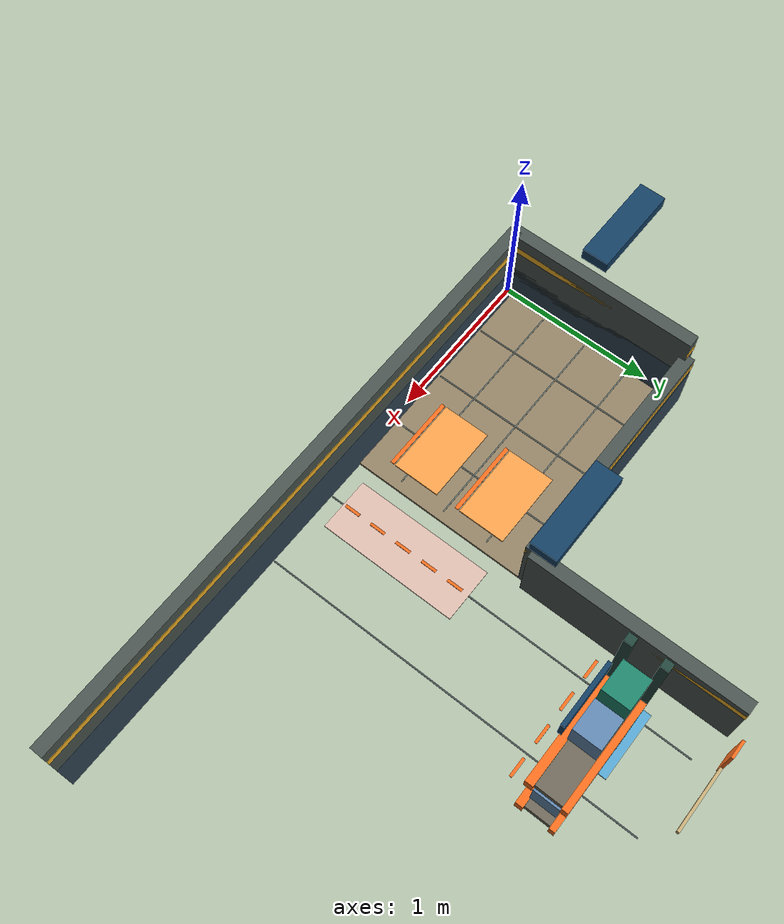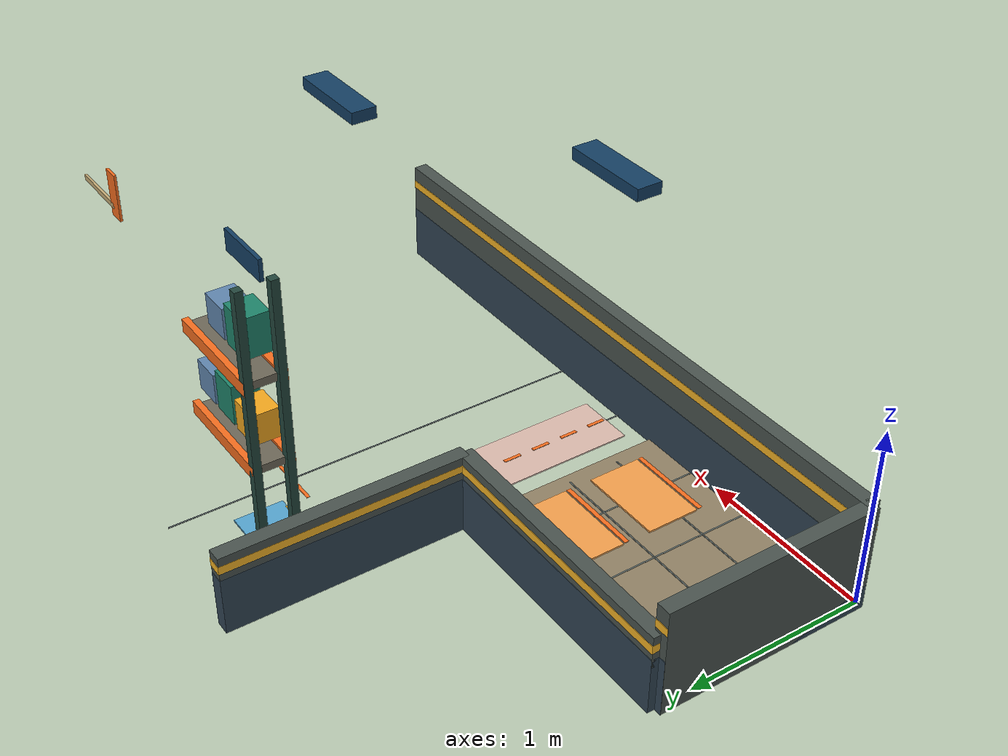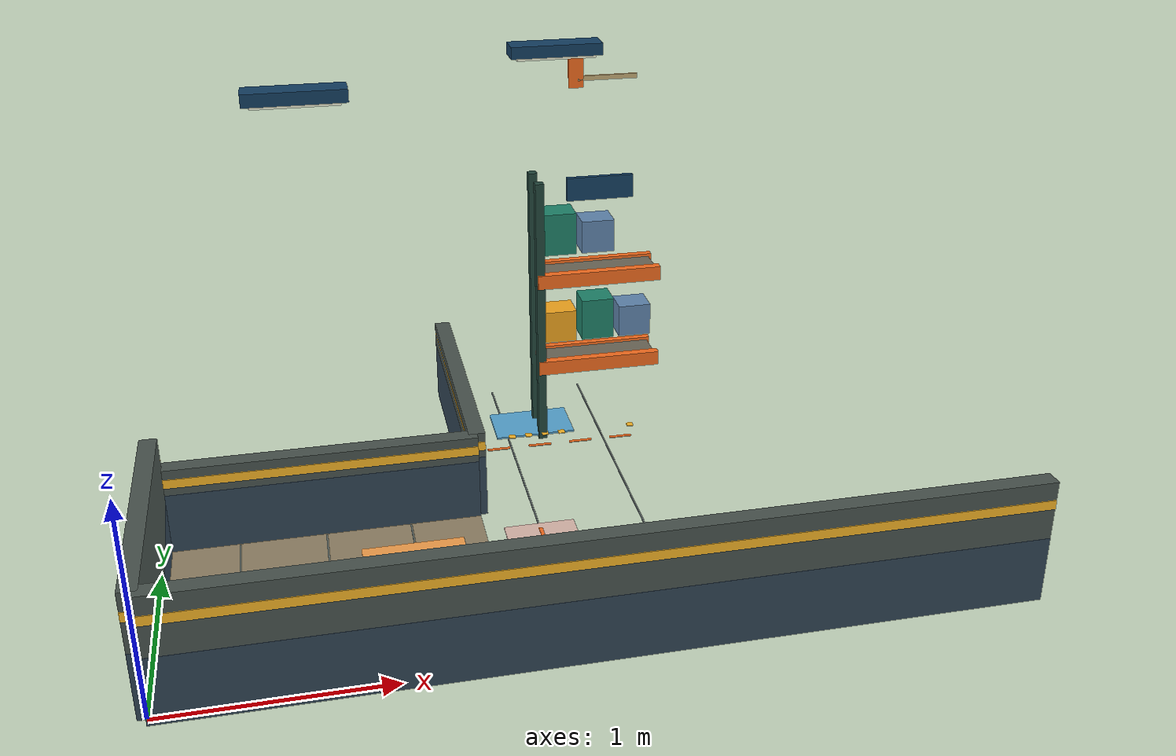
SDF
<sdf version="1.9">
 <world name="toktak_warehouse">
  <model name="ground_plane">
   <static>true</static>
   <link name="link">
    <collision name="collision">
     <geometry><plane><normal>0 0 1</normal><size>100 100</size></plane></geometry>
    </collision>
   </link>
  </model>
  <model name="002_dispatch_wing_floor">
   <static>true</static>
   <link name="link">
    <visual name="visual">
     <geometry><box><size>1.4900 1.2000 0.0180</size></box></geometry>
     <material>
      <ambient>0.57 0.51 0.40 1</ambient>
      <diffuse>0.57 0.51 0.40 1</diffuse>
      <specular>0.20 0.22 0.24 1</specular>
     </material>
    </visual>
   </link>
   <pose>0.7450 0.6000 0.0090 0.0000 0.0000 0.0000</pose>
  </model>
  <model name="003_floor_joint">
   <static>true</static>
   <link name="link">
    <visual name="visual">
     <geometry><box><size>0.0080 2.4000 0.0030</size></box></geometry>
     <material>
      <ambient>0.34 0.38 0.38 1</ambient>
      <diffuse>0.34 0.38 0.38 1</diffuse>
      <specular>0.20 0.22 0.24 1</specular>
     </material>
    </visual>
   </link>
   <pose>1.7500 1.2500 0.0180 0.0000 0.0000 0.0000</pose>
  </model>
  <model name="004_floor_joint">
   <static>true</static>
   <link name="link">
    <visual name="visual">
     <geometry><box><size>0.0080 2.4000 0.0030</size></box></geometry>
     <material>
      <ambient>0.34 0.38 0.38 1</ambient>
      <diffuse>0.34 0.38 0.38 1</diffuse>
      <specular>0.20 0.22 0.24 1</specular>
     </material>
    </visual>
   </link>
   <pose>2.2500 1.2500 0.0180 0.0000 0.0000 0.0000</pose>
  </model>
  <model name="014_dispatch_floor_joint">
   <static>true</static>
   <link name="link">
    <visual name="visual">
     <geometry><box><size>0.0080 1.1000 0.0030</size></box></geometry>
     <material>
      <ambient>0.38 0.42 0.40 1</ambient>
      <diffuse>0.38 0.42 0.40 1</diffuse>
      <specular>0.20 0.22 0.24 1</specular>
     </material>
    </visual>
   </link>
   <pose>0.3500 0.6000 0.0190 0.0000 0.0000 0.0000</pose>
  </model>
  <model name="015_dispatch_floor_joint">
   <static>true</static>
   <link name="link">
    <visual name="visual">
     <geometry><box><size>0.0080 1.1000 0.0030</size></box></geometry>
     <material>
      <ambient>0.38 0.42 0.40 1</ambient>
      <diffuse>0.38 0.42 0.40 1</diffuse>
      <specular>0.20 0.22 0.24 1</specular>
     </material>
    </visual>
   </link>
   <pose>0.7500 0.6000 0.0190 0.0000 0.0000 0.0000</pose>
  </model>
  <model name="016_dispatch_floor_joint">
   <static>true</static>
   <link name="link">
    <visual name="visual">
     <geometry><box><size>0.0080 1.1000 0.0030</size></box></geometry>
     <material>
      <ambient>0.38 0.42 0.40 1</ambient>
      <diffuse>0.38 0.42 0.40 1</diffuse>
      <specular>0.20 0.22 0.24 1</specular>
     </material>
    </visual>
   </link>
   <pose>1.1500 0.6000 0.0190 0.0000 0.0000 0.0000</pose>
  </model>
  <model name="017_dispatch_floor_joint">
   <static>true</static>
   <link name="link">
    <visual name="visual">
     <geometry><box><size>1.3800 0.0080 0.0030</size></box></geometry>
     <material>
      <ambient>0.38 0.42 0.40 1</ambient>
      <diffuse>0.38 0.42 0.40 1</diffuse>
      <specular>0.20 0.22 0.24 1</specular>
     </material>
    </visual>
   </link>
   <pose>0.7450 0.3000 0.0190 0.0000 0.0000 0.0000</pose>
  </model>
  <model name="018_dispatch_floor_joint">
   <static>true</static>
   <link name="link">
    <visual name="visual">
     <geometry><box><size>1.3800 0.0080 0.0030</size></box></geometry>
     <material>
      <ambient>0.38 0.42 0.40 1</ambient>
      <diffuse>0.38 0.42 0.40 1</diffuse>
      <specular>0.20 0.22 0.24 1</specular>
     </material>
    </visual>
   </link>
   <pose>0.7450 0.6000 0.0190 0.0000 0.0000 0.0000</pose>
  </model>
  <model name="019_dispatch_floor_joint">
   <static>true</static>
   <link name="link">
    <visual name="visual">
     <geometry><box><size>1.3800 0.0080 0.0030</size></box></geometry>
     <material>
      <ambient>0.38 0.42 0.40 1</ambient>
      <diffuse>0.38 0.42 0.40 1</diffuse>
      <specular>0.20 0.22 0.24 1</specular>
     </material>
    </visual>
   </link>
   <pose>0.7450 0.9000 0.0190 0.0000 0.0000 0.0000</pose>
  </model>
  <model name="020_south_wall">
   <static>true</static>
   <link name="link">
    <collision name="collision"><geometry><box><size>3.8100 0.0800 0.6000</size></box></geometry></collision>
    <visual name="visual">
     <geometry><box><size>3.8100 0.0800 0.6000</size></box></geometry>
     <material>
      <ambient>0.29 0.33 0.31 1</ambient>
      <diffuse>0.29 0.33 0.31 1</diffuse>
      <specular>0.20 0.22 0.24 1</specular>
     </material>
    </visual>
   </link>
   <pose>1.9050 0.0000 0.3000 0.0000 0.0000 0.0000</pose>
  </model>
  <model name="021_south_plinth">
   <static>true</static>
   <link name="link">
    <visual name="visual">
     <geometry><box><size>3.8100 0.0820 0.3200</size></box></geometry>
     <material>
      <ambient>0.19 0.27 0.33 1</ambient>
      <diffuse>0.19 0.27 0.33 1</diffuse>
      <specular>0.20 0.22 0.24 1</specular>
     </material>
    </visual>
   </link>
   <pose>1.9050 0.0000 0.1600 0.0000 0.0000 0.0000</pose>
  </model>
  <model name="022_south_safety_band">
   <static>true</static>
   <link name="link">
    <visual name="visual">
     <geometry><box><size>3.8100 0.0840 0.0450</size></box></geometry>
     <material>
      <ambient>0.98 0.72 0.15 1</ambient>
      <diffuse>0.98 0.72 0.15 1</diffuse>
      <specular>0.20 0.22 0.24 1</specular>
     </material>
    </visual>
   </link>
   <pose>1.9050 0.0000 0.4900 0.0000 0.0000 0.0000</pose>
  </model>
  <model name="029_inner_vertical_wall">
   <static>true</static>
   <link name="link">
    <collision name="collision"><geometry><box><size>0.0800 1.3300 0.4500</size></box></geometry></collision>
    <visual name="visual">
     <geometry><box><size>0.0800 1.3300 0.4500</size></box></geometry>
     <material>
      <ambient>0.29 0.33 0.31 1</ambient>
      <diffuse>0.29 0.33 0.31 1</diffuse>
      <specular>0.20 0.22 0.24 1</specular>
     </material>
    </visual>
   </link>
   <pose>1.4900 1.8650 0.2250 0.0000 0.0000 0.0000</pose>
  </model>
  <model name="030_inner_vertical_plinth">
   <static>true</static>
   <link name="link">
    <visual name="visual">
     <geometry><box><size>0.0800 1.3320 0.3200</size></box></geometry>
     <material>
      <ambient>0.19 0.27 0.33 1</ambient>
      <diffuse>0.19 0.27 0.33 1</diffuse>
      <specular>0.20 0.22 0.24 1</specular>
     </material>
    </visual>
   </link>
   <pose>1.4900 1.8650 0.1600 0.0000 0.0000 0.0000</pose>
  </model>
  <model name="031_inner_vertical_safety_band">
   <static>true</static>
   <link name="link">
    <visual name="visual">
     <geometry><box><size>0.0800 1.3340 0.0450</size></box></geometry>
     <material>
      <ambient>0.98 0.72 0.15 1</ambient>
      <diffuse>0.98 0.72 0.15 1</diffuse>
      <specular>0.20 0.22 0.24 1</specular>
     </material>
    </visual>
   </link>
   <pose>1.4900 1.8650 0.3800 0.0000 0.0000 0.0000</pose>
  </model>
  <model name="032_inner_horizontal_wall">
   <static>true</static>
   <link name="link">
    <collision name="collision"><geometry><box><size>1.4900 0.0800 0.4500</size></box></geometry></collision>
    <visual name="visual">
     <geometry><box><size>1.4900 0.0800 0.4500</size></box></geometry>
     <material>
      <ambient>0.29 0.33 0.31 1</ambient>
      <diffuse>0.29 0.33 0.31 1</diffuse>
      <specular>0.20 0.22 0.24 1</specular>
     </material>
    </visual>
   </link>
   <pose>0.7450 1.2000 0.2250 0.0000 0.0000 0.0000</pose>
  </model>
  <model name="033_inner_horizontal_plinth">
   <static>true</static>
   <link name="link">
    <visual name="visual">
     <geometry><box><size>1.4900 0.0820 0.3200</size></box></geometry>
     <material>
      <ambient>0.19 0.27 0.33 1</ambient>
      <diffuse>0.19 0.27 0.33 1</diffuse>
      <specular>0.20 0.22 0.24 1</specular>
     </material>
    </visual>
   </link>
   <pose>0.7450 1.2000 0.1600 0.0000 0.0000 0.0000</pose>
  </model>
  <model name="034_inner_horizontal_safety_band">
   <static>true</static>
   <link name="link">
    <visual name="visual">
     <geometry><box><size>1.4900 0.0840 0.0450</size></box></geometry>
     <material>
      <ambient>0.98 0.72 0.15 1</ambient>
      <diffuse>0.98 0.72 0.15 1</diffuse>
      <specular>0.20 0.22 0.24 1</specular>
     </material>
    </visual>
   </link>
   <pose>0.7450 1.2000 0.3800 0.0000 0.0000 0.0000</pose>
  </model>
  <model name="035_west_lower_wall">
   <static>true</static>
   <link name="link">
    <collision name="collision"><geometry><box><size>0.0800 1.2000 0.6000</size></box></geometry></collision>
    <visual name="visual">
     <geometry><box><size>0.0800 1.2000 0.6000</size></box></geometry>
     <material>
      <ambient>0.29 0.33 0.31 1</ambient>
      <diffuse>0.29 0.33 0.31 1</diffuse>
      <specular>0.20 0.22 0.24 1</specular>
     </material>
    </visual>
   </link>
   <pose>0.0000 0.6000 0.3000 0.0000 0.0000 0.0000</pose>
  </model>
  <model name="036_west_lower_plinth">
   <static>true</static>
   <link name="link">
    <visual name="visual">
     <geometry><box><size>0.0800 1.2020 0.3200</size></box></geometry>
     <material>
      <ambient>0.19 0.27 0.33 1</ambient>
      <diffuse>0.19 0.27 0.33 1</diffuse>
      <specular>0.20 0.22 0.24 1</specular>
     </material>
    </visual>
   </link>
   <pose>0.0000 0.6000 0.1600 0.0000 0.0000 0.0000</pose>
  </model>
  <model name="037_west_lower_safety_band">
   <static>true</static>
   <link name="link">
    <visual name="visual">
     <geometry><box><size>0.0800 1.2040 0.0450</size></box></geometry>
     <material>
      <ambient>0.98 0.72 0.15 1</ambient>
      <diffuse>0.98 0.72 0.15 1</diffuse>
      <specular>0.20 0.22 0.24 1</specular>
     </material>
    </visual>
   </link>
   <pose>0.0000 0.6000 0.4900 0.0000 0.0000 0.0000</pose>
  </model>
  <model name="039_lane_dash">
   <static>true</static>
   <link name="link">
    <visual name="visual">
     <geometry><box><size>0.1200 0.0180 0.0040</size></box></geometry>
     <material>
      <ambient>0.97 0.43 0.12 1</ambient>
      <diffuse>0.97 0.43 0.12 1</diffuse>
      <specular>0.20 0.22 0.24 1</specular>
     </material>
    </visual>
   </link>
   <pose>1.6800 1.7700 0.0300 0.0000 0.0000 0.0000</pose>
  </model>
  <model name="040_lane_dash">
   <static>true</static>
   <link name="link">
    <visual name="visual">
     <geometry><box><size>0.1200 0.0180 0.0040</size></box></geometry>
     <material>
      <ambient>0.97 0.43 0.12 1</ambient>
      <diffuse>0.97 0.43 0.12 1</diffuse>
      <specular>0.20 0.22 0.24 1</specular>
     </material>
    </visual>
   </link>
   <pose>1.9000 1.7700 0.0300 0.0000 0.0000 0.0000</pose>
  </model>
  <model name="041_lane_dash">
   <static>true</static>
   <link name="link">
    <visual name="visual">
     <geometry><box><size>0.1200 0.0180 0.0040</size></box></geometry>
     <material>
      <ambient>0.97 0.43 0.12 1</ambient>
      <diffuse>0.97 0.43 0.12 1</diffuse>
      <specular>0.20 0.22 0.24 1</specular>
     </material>
    </visual>
   </link>
   <pose>2.1200 1.7700 0.0300 0.0000 0.0000 0.0000</pose>
  </model>
  <model name="042_lane_dash">
   <static>true</static>
   <link name="link">
    <visual name="visual">
     <geometry><box><size>0.1200 0.0180 0.0040</size></box></geometry>
     <material>
      <ambient>0.97 0.43 0.12 1</ambient>
      <diffuse>0.97 0.43 0.12 1</diffuse>
      <specular>0.20 0.22 0.24 1</specular>
     </material>
    </visual>
   </link>
   <pose>2.3400 1.7700 0.0300 0.0000 0.0000 0.0000</pose>
  </model>
  <model name="049_customer_aisle">
   <static>true</static>
   <link name="link">
    <visual name="visual">
     <geometry><box><size>0.3400 0.8800 0.0080</size></box></geometry>
     <material>
      <ambient>0.86 0.73 0.68 1</ambient>
      <diffuse>0.86 0.73 0.68 1</diffuse>
      <specular>0.20 0.22 0.24 1</specular>
     </material>
    </visual>
   </link>
   <pose>1.7500 0.5750 0.0240 0.0000 0.0000 0.0000</pose>
  </model>
  <model name="050_customer_lane_dash">
   <static>true</static>
   <link name="link">
    <visual name="visual">
     <geometry><box><size>0.0180 0.1000 0.0040</size></box></geometry>
     <material>
      <ambient>0.97 0.43 0.12 1</ambient>
      <diffuse>0.97 0.43 0.12 1</diffuse>
      <specular>0.20 0.22 0.24 1</specular>
     </material>
    </visual>
   </link>
   <pose>1.7500 0.2000 0.0300 0.0000 0.0000 0.0000</pose>
  </model>
  <model name="051_customer_lane_dash">
   <static>true</static>
   <link name="link">
    <visual name="visual">
     <geometry><box><size>0.0180 0.1000 0.0040</size></box></geometry>
     <material>
      <ambient>0.97 0.43 0.12 1</ambient>
      <diffuse>0.97 0.43 0.12 1</diffuse>
      <specular>0.20 0.22 0.24 1</specular>
     </material>
    </visual>
   </link>
   <pose>1.7500 0.3800 0.0300 0.0000 0.0000 0.0000</pose>
  </model>
  <model name="052_customer_lane_dash">
   <static>true</static>
   <link name="link">
    <visual name="visual">
     <geometry><box><size>0.0180 0.1000 0.0040</size></box></geometry>
     <material>
      <ambient>0.97 0.43 0.12 1</ambient>
      <diffuse>0.97 0.43 0.12 1</diffuse>
      <specular>0.20 0.22 0.24 1</specular>
     </material>
    </visual>
   </link>
   <pose>1.7500 0.5600 0.0300 0.0000 0.0000 0.0000</pose>
  </model>
  <model name="053_customer_lane_dash">
   <static>true</static>
   <link name="link">
    <visual name="visual">
     <geometry><box><size>0.0180 0.1000 0.0040</size></box></geometry>
     <material>
      <ambient>0.97 0.43 0.12 1</ambient>
      <diffuse>0.97 0.43 0.12 1</diffuse>
      <specular>0.20 0.22 0.24 1</specular>
     </material>
    </visual>
   </link>
   <pose>1.7500 0.7400 0.0300 0.0000 0.0000 0.0000</pose>
  </model>
  <model name="054_customer_lane_dash">
   <static>true</static>
   <link name="link">
    <visual name="visual">
     <geometry><box><size>0.0180 0.1000 0.0040</size></box></geometry>
     <material>
      <ambient>0.97 0.43 0.12 1</ambient>
      <diffuse>0.97 0.43 0.12 1</diffuse>
      <specular>0.20 0.22 0.24 1</specular>
     </material>
    </visual>
   </link>
   <pose>1.7500 0.9200 0.0300 0.0000 0.0000 0.0000</pose>
  </model>
  <model name="055_L1_pad">
   <static>true</static>
   <link name="link">
    <visual name="visual">
     <geometry><box><size>0.4200 0.2700 0.0100</size></box></geometry>
     <material>
      <ambient>0.34 0.65 0.82 1</ambient>
      <diffuse>0.34 0.65 0.82 1</diffuse>
      <specular>0.20 0.22 0.24 1</specular>
     </material>
    </visual>
   </link>
   <pose>1.9000 2.0250 0.0260 0.0000 0.0000 0.0000</pose>
  </model>
  <model name="056_L1_approach_mark">
   <static>true</static>
   <link name="link">
    <visual name="visual">
     <geometry><box><size>0.0350 0.0350 0.0040</size></box></geometry>
     <material>
      <ambient>0.98 0.72 0.15 1</ambient>
      <diffuse>0.98 0.72 0.15 1</diffuse>
      <specular>0.20 0.22 0.24 1</specular>
     </material>
    </visual>
   </link>
   <pose>1.7700 1.8820 0.0330 0.0000 0.0000 0.0000</pose>
  </model>
  <model name="057_L1_approach_mark">
   <static>true</static>
   <link name="link">
    <visual name="visual">
     <geometry><box><size>0.0350 0.0350 0.0040</size></box></geometry>
     <material>
      <ambient>0.98 0.72 0.15 1</ambient>
      <diffuse>0.98 0.72 0.15 1</diffuse>
      <specular>0.20 0.22 0.24 1</specular>
     </material>
    </visual>
   </link>
   <pose>1.8600 1.8820 0.0330 0.0000 0.0000 0.0000</pose>
  </model>
  <model name="058_L1_approach_mark">
   <static>true</static>
   <link name="link">
    <visual name="visual">
     <geometry><box><size>0.0350 0.0350 0.0040</size></box></geometry>
     <material>
      <ambient>0.98 0.72 0.15 1</ambient>
      <diffuse>0.98 0.72 0.15 1</diffuse>
      <specular>0.20 0.22 0.24 1</specular>
     </material>
    </visual>
   </link>
   <pose>1.9500 1.8820 0.0330 0.0000 0.0000 0.0000</pose>
  </model>
  <model name="059_L1_approach_mark">
   <static>true</static>
   <link name="link">
    <visual name="visual">
     <geometry><box><size>0.0350 0.0350 0.0040</size></box></geometry>
     <material>
      <ambient>0.98 0.72 0.15 1</ambient>
      <diffuse>0.98 0.72 0.15 1</diffuse>
      <specular>0.20 0.22 0.24 1</specular>
     </material>
    </visual>
   </link>
   <pose>2.0400 1.8820 0.0330 0.0000 0.0000 0.0000</pose>
  </model>
  <model name="061_L2_approach_mark">
   <static>true</static>
   <link name="link">
    <visual name="visual">
     <geometry><box><size>0.0350 0.0350 0.0040</size></box></geometry>
     <material>
      <ambient>0.98 0.72 0.15 1</ambient>
      <diffuse>0.98 0.72 0.15 1</diffuse>
      <specular>0.20 0.22 0.24 1</specular>
     </material>
    </visual>
   </link>
   <pose>2.4200 1.8820 0.0330 0.0000 0.0000 0.0000</pose>
  </model>
  <model name="065_C1_pad">
   <static>true</static>
   <link name="link">
    <visual name="visual">
     <geometry><box><size>0.4800 0.3000 0.0100</size></box></geometry>
     <material>
      <ambient>0.96 0.63 0.30 1</ambient>
      <diffuse>0.96 0.63 0.30 1</diffuse>
      <specular>0.20 0.22 0.24 1</specular>
     </material>
    </visual>
   </link>
   <pose>1.1400 0.8200 0.0260 0.0000 0.0000 0.0000</pose>
  </model>
  <model name="066_C1_pad_front">
   <static>true</static>
   <link name="link">
    <visual name="visual">
     <geometry><box><size>0.4800 0.0250 0.0040</size></box></geometry>
     <material>
      <ambient>0.97 0.43 0.12 1</ambient>
      <diffuse>0.97 0.43 0.12 1</diffuse>
      <specular>0.20 0.22 0.24 1</specular>
     </material>
    </visual>
   </link>
   <pose>1.1400 0.6500 0.0310 0.0000 0.0000 0.0000</pose>
  </model>
  <model name="067_C2_pad">
   <static>true</static>
   <link name="link">
    <visual name="visual">
     <geometry><box><size>0.4800 0.3000 0.0100</size></box></geometry>
     <material>
      <ambient>0.96 0.63 0.30 1</ambient>
      <diffuse>0.96 0.63 0.30 1</diffuse>
      <specular>0.20 0.22 0.24 1</specular>
     </material>
    </visual>
   </link>
   <pose>1.1400 0.3600 0.0260 0.0000 0.0000 0.0000</pose>
  </model>
  <model name="068_C2_pad_front">
   <static>true</static>
   <link name="link">
    <visual name="visual">
     <geometry><box><size>0.4800 0.0250 0.0040</size></box></geometry>
     <material>
      <ambient>0.97 0.43 0.12 1</ambient>
      <diffuse>0.97 0.43 0.12 1</diffuse>
      <specular>0.20 0.22 0.24 1</specular>
     </material>
    </visual>
   </link>
   <pose>1.1400 0.1900 0.0310 0.0000 0.0000 0.0000</pose>
  </model>
  <model name="070_rack_A_left_front_upright">
   <static>true</static>
   <link name="link">
    <visual name="visual">
     <geometry><box><size>0.0450 0.0450 1.4400</size></box></geometry>
     <material>
      <ambient>0.14 0.28 0.24 1</ambient>
      <diffuse>0.14 0.28 0.24 1</diffuse>
      <specular>0.20 0.22 0.24 1</specular>
     </material>
    </visual>
   </link>
   <pose>1.9400 1.9100 0.7200 0.0000 0.0000 0.0000</pose>
  </model>
  <model name="071_rack_A_left_back_upright">
   <static>true</static>
   <link name="link">
    <visual name="visual">
     <geometry><box><size>0.0450 0.0450 1.4400</size></box></geometry>
     <material>
      <ambient>0.14 0.28 0.24 1</ambient>
      <diffuse>0.14 0.28 0.24 1</diffuse>
      <specular>0.20 0.22 0.24 1</specular>
     </material>
    </visual>
   </link>
   <pose>1.9400 2.0900 0.7200 0.0000 0.0000 0.0000</pose>
  </model>
  <model name="074_rack_A_deck_1">
   <static>true</static>
   <link name="link">
    <visual name="visual">
     <geometry><box><size>0.6200 0.2050 0.0450</size></box></geometry>
     <material>
      <ambient>0.43 0.41 0.35 1</ambient>
      <diffuse>0.43 0.41 0.35 1</diffuse>
      <specular>0.20 0.22 0.24 1</specular>
     </material>
    </visual>
   </link>
   <pose>2.2500 2.0000 0.4200 0.0000 0.0000 0.0000</pose>
  </model>
  <model name="075_rack_A_front_beam_1">
   <static>true</static>
   <link name="link">
    <visual name="visual">
     <geometry><box><size>0.6500 0.0450 0.0750</size></box></geometry>
     <material>
      <ambient>0.97 0.43 0.12 1</ambient>
      <diffuse>0.97 0.43 0.12 1</diffuse>
      <specular>0.20 0.22 0.24 1</specular>
     </material>
    </visual>
   </link>
   <pose>2.2500 1.9050 0.4200 0.0000 0.0000 0.0000</pose>
  </model>
  <model name="076_rack_A_back_beam_1">
   <static>true</static>
   <link name="link">
    <visual name="visual">
     <geometry><box><size>0.6500 0.0350 0.0750</size></box></geometry>
     <material>
      <ambient>0.97 0.43 0.12 1</ambient>
      <diffuse>0.97 0.43 0.12 1</diffuse>
      <specular>0.20 0.22 0.24 1</specular>
     </material>
    </visual>
   </link>
   <pose>2.2500 2.0950 0.4200 0.0000 0.0000 0.0000</pose>
  </model>
  <model name="077_rack_A_deck_2">
   <static>true</static>
   <link name="link">
    <visual name="visual">
     <geometry><box><size>0.6200 0.2050 0.0450</size></box></geometry>
     <material>
      <ambient>0.43 0.41 0.35 1</ambient>
      <diffuse>0.43 0.41 0.35 1</diffuse>
      <specular>0.20 0.22 0.24 1</specular>
     </material>
    </visual>
   </link>
   <pose>2.2500 2.0000 0.9100 0.0000 0.0000 0.0000</pose>
  </model>
  <model name="078_rack_A_front_beam_2">
   <static>true</static>
   <link name="link">
    <visual name="visual">
     <geometry><box><size>0.6500 0.0450 0.0750</size></box></geometry>
     <material>
      <ambient>0.97 0.43 0.12 1</ambient>
      <diffuse>0.97 0.43 0.12 1</diffuse>
      <specular>0.20 0.22 0.24 1</specular>
     </material>
    </visual>
   </link>
   <pose>2.2500 1.9050 0.9100 0.0000 0.0000 0.0000</pose>
  </model>
  <model name="079_rack_A_back_beam_2">
   <static>true</static>
   <link name="link">
    <visual name="visual">
     <geometry><box><size>0.6500 0.0350 0.0750</size></box></geometry>
     <material>
      <ambient>0.97 0.43 0.12 1</ambient>
      <diffuse>0.97 0.43 0.12 1</diffuse>
      <specular>0.20 0.22 0.24 1</specular>
     </material>
    </visual>
   </link>
   <pose>2.2500 2.0950 0.9100 0.0000 0.0000 0.0000</pose>
  </model>
  <model name="086_carton_A_1_0">
   <static>true</static>
   <link name="link">
    <visual name="visual">
     <geometry><box><size>0.1700 0.1500 0.1700</size></box></geometry>
     <material>
      <ambient>0.96 0.66 0.12 1</ambient>
      <diffuse>0.96 0.66 0.12 1</diffuse>
      <specular>0.20 0.22 0.24 1</specular>
     </material>
    </visual>
   </link>
   <pose>2.0500 2.0000 0.6350 0.0000 0.0000 0.0000</pose>
  </model>
  <model name="087_carton_A_1_1">
   <static>true</static>
   <link name="link">
    <visual name="visual">
     <geometry><box><size>0.1700 0.1500 0.2200</size></box></geometry>
     <material>
      <ambient>0.12 0.52 0.42 1</ambient>
      <diffuse>0.12 0.52 0.42 1</diffuse>
      <specular>0.20 0.22 0.24 1</specular>
     </material>
    </visual>
   </link>
   <pose>2.2500 2.0000 0.6600 0.0000 0.0000 0.0000</pose>
  </model>
  <model name="088_carton_A_1_2">
   <static>true</static>
   <link name="link">
    <visual name="visual">
     <geometry><box><size>0.1700 0.1500 0.1700</size></box></geometry>
     <material>
      <ambient>0.38 0.53 0.69 1</ambient>
      <diffuse>0.38 0.53 0.69 1</diffuse>
      <specular>0.20 0.22 0.24 1</specular>
     </material>
    </visual>
   </link>
   <pose>2.4500 2.0000 0.6350 0.0000 0.0000 0.0000</pose>
  </model>
  <model name="089_carton_A_2_0">
   <static>true</static>
   <link name="link">
    <visual name="visual">
     <geometry><box><size>0.1700 0.1500 0.2200</size></box></geometry>
     <material>
      <ambient>0.12 0.52 0.42 1</ambient>
      <diffuse>0.12 0.52 0.42 1</diffuse>
      <specular>0.20 0.22 0.24 1</specular>
     </material>
    </visual>
   </link>
   <pose>2.0500 2.0000 1.1500 0.0000 0.0000 0.0000</pose>
  </model>
  <model name="090_carton_A_2_1">
   <static>true</static>
   <link name="link">
    <visual name="visual">
     <geometry><box><size>0.1700 0.1500 0.1700</size></box></geometry>
     <material>
      <ambient>0.38 0.53 0.69 1</ambient>
      <diffuse>0.38 0.53 0.69 1</diffuse>
      <specular>0.20 0.22 0.24 1</specular>
     </material>
    </visual>
   </link>
   <pose>2.2500 2.0000 1.1250 0.0000 0.0000 0.0000</pose>
  </model>
  <model name="095_rack_A_header">
   <static>true</static>
   <link name="link">
    <visual name="visual">
     <geometry><box><size>0.3400 0.0220 0.1200</size></box></geometry>
     <material>
      <ambient>0.08 0.25 0.39 1</ambient>
      <diffuse>0.08 0.25 0.39 1</diffuse>
      <specular>0.20 0.22 0.24 1</specular>
     </material>
    </visual>
   </link>
   <pose>2.2500 1.8990 1.4000 0.0000 0.0000 0.0000</pose>
  </model>
  <model name="127_warehouse_sign_accent">
   <static>true</static>
   <link name="link">
    <visual name="visual">
     <geometry><box><size>0.0800 0.0120 0.2200</size></box></geometry>
     <material>
      <ambient>0.97 0.43 0.12 1</ambient>
      <diffuse>0.97 0.43 0.12 1</diffuse>
      <specular>0.20 0.22 0.24 1</specular>
     </material>
    </visual>
   </link>
   <pose>2.2500 2.4590 1.8800 0.0000 0.0000 0.0000</pose>
  </model>
  <model name="128_sign_graphic">
   <static>true</static>
   <link name="link">
    <visual name="visual">
     <geometry><box><size>0.3200 0.0120 0.0250</size></box></geometry>
     <material>
      <ambient>0.78 0.68 0.47 1</ambient>
      <diffuse>0.78 0.68 0.47 1</diffuse>
      <specular>0.20 0.22 0.24 1</specular>
     </material>
    </visual>
   </link>
   <pose>2.4200 2.4590 1.8200 0.0000 0.0000 0.0000</pose>
  </model>
  <model name="133_light_1_housing">
   <static>true</static>
   <link name="link">
    <visual name="visual">
     <geometry><box><size>0.4200 0.1200 0.0550</size></box></geometry>
     <material>
      <ambient>0.08 0.25 0.39 1</ambient>
      <diffuse>0.08 0.25 0.39 1</diffuse>
      <specular>0.20 0.22 0.24 1</specular>
     </material>
    </visual>
   </link>
   <pose>1.9500 1.5200 2.2000 0.0000 0.0000 0.0000</pose>
  </model>
  <model name="134_light_1_diffuser">
   <static>true</static>
   <link name="link">
    <visual name="visual">
     <geometry><box><size>0.3600 0.0900 0.0120</size></box></geometry>
     <material>
      <ambient>0.95 0.96 0.86 1</ambient>
      <diffuse>0.95 0.96 0.86 1</diffuse>
      <specular>0.20 0.22 0.24 1</specular>
     </material>
    </visual>
   </link>
   <pose>1.9500 1.5200 2.1660 0.0000 0.0000 0.0000</pose>
  </model>
  <model name="137_light_3_housing">
   <static>true</static>
   <link name="link">
    <visual name="visual">
     <geometry><box><size>0.4200 0.1200 0.0550</size></box></geometry>
     <material>
      <ambient>0.08 0.25 0.39 1</ambient>
      <diffuse>0.08 0.25 0.39 1</diffuse>
      <specular>0.20 0.22 0.24 1</specular>
     </material>
    </visual>
   </link>
   <pose>0.7800 0.9400 2.2000 0.0000 0.0000 0.0000</pose>
  </model>
  <model name="138_light_3_diffuser">
   <static>true</static>
   <link name="link">
    <visual name="visual">
     <geometry><box><size>0.3600 0.0900 0.0120</size></box></geometry>
     <material>
      <ambient>0.95 0.96 0.86 1</ambient>
      <diffuse>0.95 0.96 0.86 1</diffuse>
      <specular>0.20 0.22 0.24 1</specular>
     </material>
    </visual>
   </link>
   <pose>0.7800 0.9400 2.1660 0.0000 0.0000 0.0000</pose>
  </model>
 </world>
</sdf>
